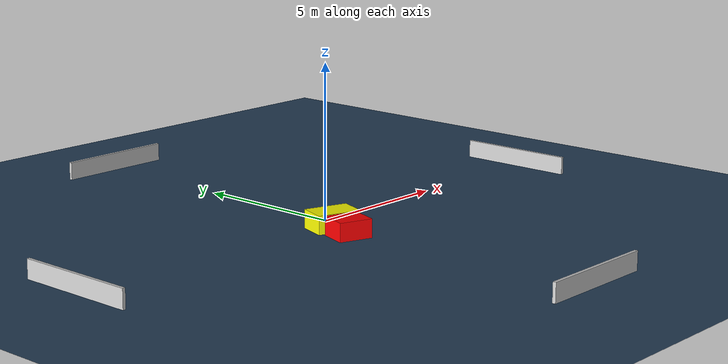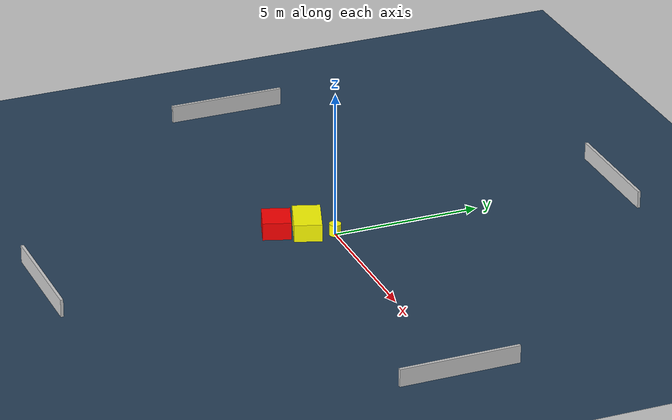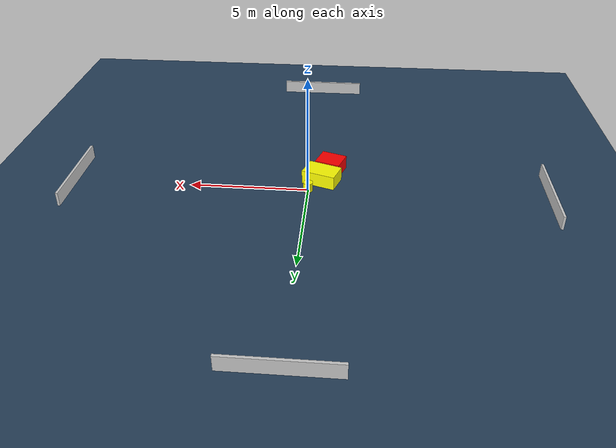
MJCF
<?xml version="1.0" ?>
<mujoco model="generated_environment">
  <option timestep="0.01" integrator="RK4" cone="elliptic"/>
  <default>
    <geom density="1"/>
  </default>
  <asset>
    <texture builtin="gradient" height="3072" name="skybox" rgb1="0.3 0.5 0.7" rgb2="0 0 0" type="skybox" width="512"/>
    <texture builtin="checker" height="300" name="groundplane" rgb1="0.2 0.3 0.4" rgb2="0.1 0.2 0.3" type="2d" width="300"/>
    <material name="groundplane" reflectance="0.2" texrepeat="5 5" texture="groundplane"/>
  </asset>
  <worldbody>
    <light dir="0 0 -1" directional="true" pos="0 0 1.5"/>
    <geom condim="3" friction="0.5 0.005 0.001" material="groundplane" name="floor" pos="0 0 0" size="0 0 0.05" type="plane"/>
    <body name="walls">
      <geom name="wall_1" condim="4" pos="-10.0 0.0 0.3" rgba="0.800000011920929 0.800000011920929 0.800000011920929 1.0" size="0.05 2.0 0.3" type="box"/>
      <geom name="wall_2" condim="4" pos="10.0 0.0 0.3" rgba="0.800000011920929 0.800000011920929 0.800000011920929 1.0" size="0.05 2.0 0.3" type="box"/>
      <geom name="wall_3" condim="4" pos="0.0 -10.0 0.3" rgba="0.800000011920929 0.800000011920929 0.800000011920929 1.0" size="2.0 0.05 0.3" type="box"/>
      <geom name="wall_4" condim="4" pos="0.0 10.0 0.3" rgba="0.800000011920929 0.800000011920929 0.800000011920929 1.0" size="2.0 0.05 0.3" type="box"/>
    </body>
    <body name="robot">
      <joint name="joint_x" type="slide" pos="0 0 0" axis="1 0 0"/>
      <joint name="joint_y" type="slide" pos="0 0 0" axis="0 1 0"/>
      <geom name="robot" type="cylinder" pos="0.0 0.0 0.2" size="0.2 0.2 0.0" mass="5.0" friction="1.0 0.005 0.0001" condim="4" rgba="1.0 1.0 0.0 1.0"/>
    </body>
    <body name="obstacle_1_movable">
      <geom name="obstacle_1_movable" condim="4" pos="-0.5283402576801098 -0.7728969731533718 0.3" euler="0 0 341.0199165309563" friction="0.0 0.005 0.001" rgba="1.0 1.0 0.0 1.0" size="0.7269426293486041 0.4626152816773818 0.3" type="box" mass="0.1"/>
      <joint type="free"/>
    </body>
    <body name="obstacle_2_static">
      <geom name="obstacle_2_static" condim="4" pos="-0.8624869275439555 -1.7195609687561098 0.3" euler="0 0 341.1926336507568" friction="0.0 0.005 0.001" rgba="1.0 0.0 0.0 1.0" size="0.5514348357375544 0.4714733951801571 0.3" type="box"/>
    </body>
  </worldbody>
  <actuator>
    <motor name="actuator_x" joint="joint_x" gear="1" ctrlrange="-1 1"/>
    <motor name="actuator_y" joint="joint_y" gear="1" ctrlrange="-1 1"/>
  </actuator>
</mujoco>
